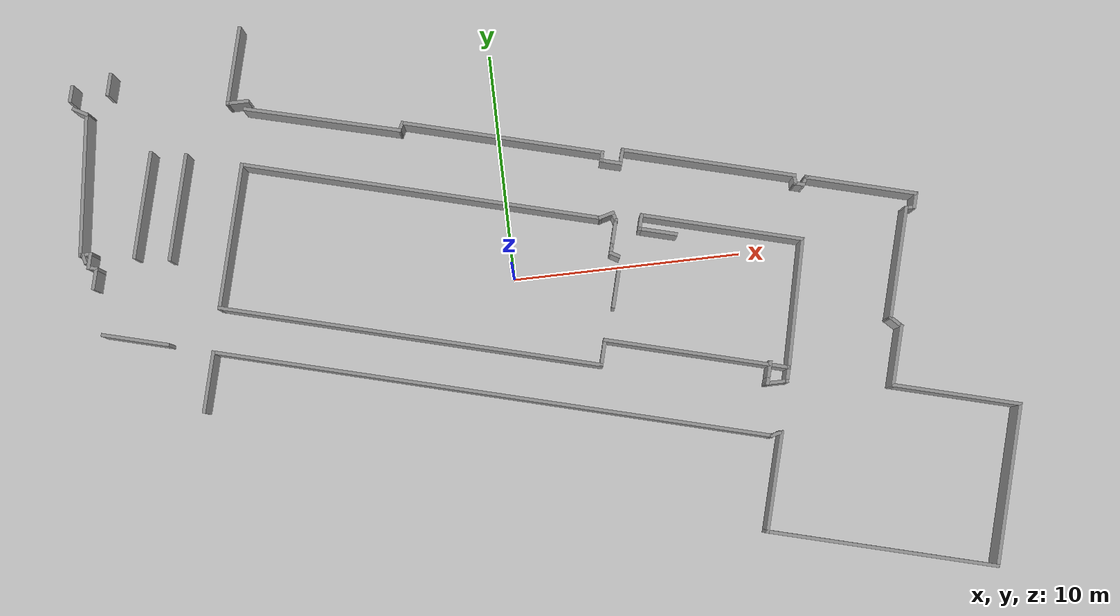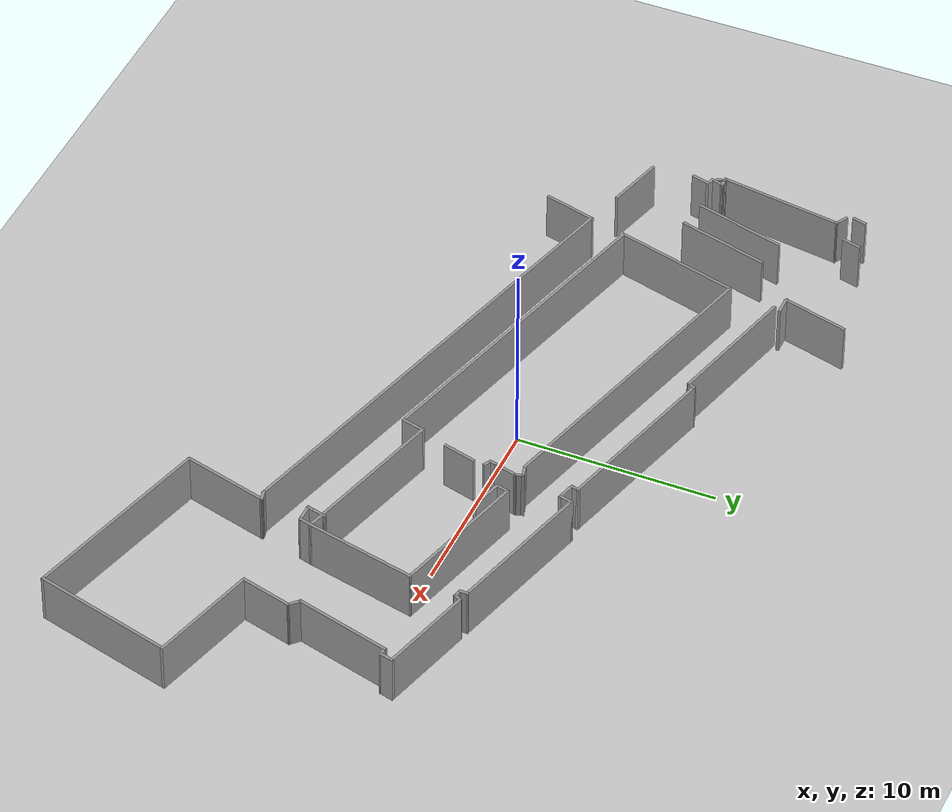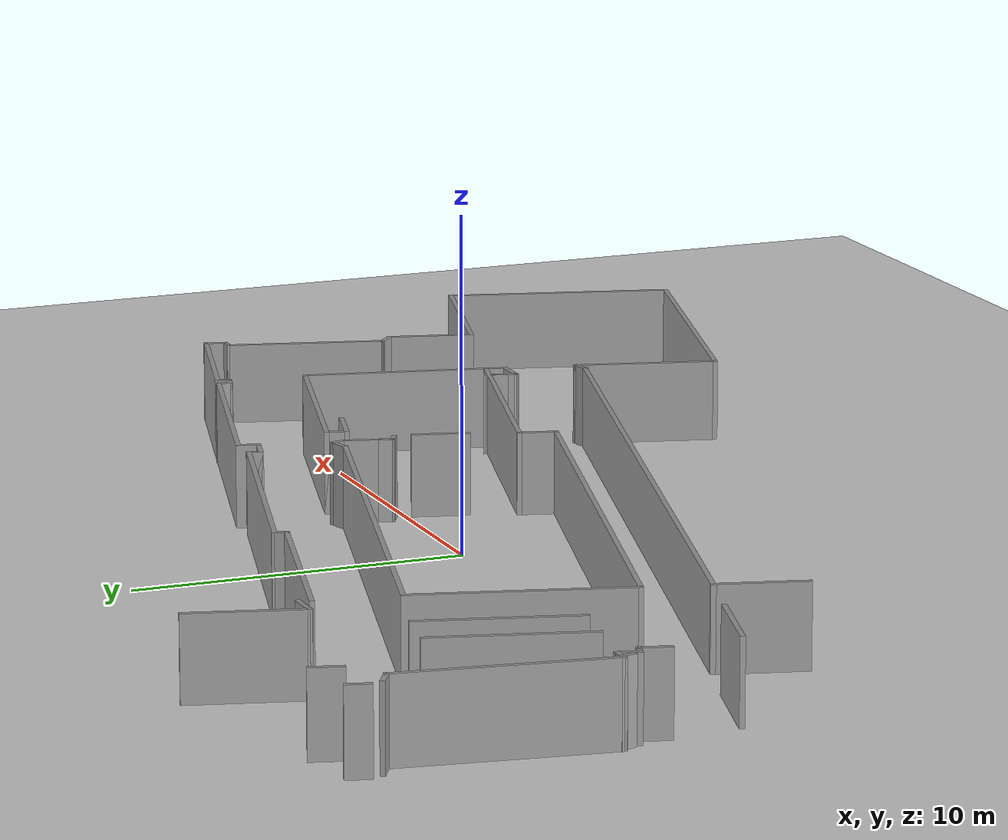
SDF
<sdf version="1.7">
 <world name="default">
  <light name="sun" type="directional">
   <pose>0 0 10 0 -0 0</pose>
   <diffuse>0.8 0.8 0.8 1</diffuse>
   <specular>0.2 0.2 0.2 1</specular>
   <attenuation>
    <range>1000</range>
    <constant>0.9</constant>
    <linear>0.01</linear>
    <quadratic>0.001</quadratic>
   </attenuation>
   <direction>-0.5 0.1 -0.9</direction>
   <spot><inner_angle>0</inner_angle><outer_angle>0</outer_angle><falloff>0</falloff></spot>
  </light>
  <model name="ground_plane">
   <static>1</static>
   <link name="link">
    <collision name="collision">
     <geometry><plane><normal>0 0 1</normal><size>100 100</size></plane></geometry>
     <surface><friction><ode><mu>100</mu><mu2>50</mu2></ode></friction></surface>
    </collision>
    <visual name="visual">
     <cast_shadows>0</cast_shadows>
     <geometry><plane><normal>0 0 1</normal><size>100 100</size></plane></geometry>
     <material>
      <script><uri>file://media/materials/scripts/gazebo.material</uri><name>Gazebo/Grey</name></script>
     </material>
    </visual>
   </link>
  </model>
  <gravity>0 0 -9.8</gravity>
  <magnetic_field>6e-06 2.3e-05 -4.2e-05</magnetic_field>
  <atmosphere type="adiabatic"/>
  <physics type="ode">
   <max_step_size>0.001</max_step_size>
   <real_time_factor>1</real_time_factor>
   <real_time_update_rate>1000</real_time_update_rate>
  </physics>
  <scene><ambient>0.4 0.4 0.4 1</ambient><background>0.7 0.7 0.7 1</background><shadows>1</shadows></scene>
  <spherical_coordinates>
   <surface_model>EARTH_WGS84</surface_model>
   <latitude_deg>0</latitude_deg>
   <longitude_deg>0</longitude_deg>
   <elevation>0</elevation>
   <heading_deg>0</heading_deg>
  </spherical_coordinates>
  <model name="Untitled">
   <pose>1.26325 -1.37856 0 0 -0 0</pose>
   <link name="Wall_0">
    <collision name="Wall_0_Collision">
     <geometry><box><size>24.75 0.15 2.5</size></box></geometry>
     <pose>0 0 1.25 0 -0 0</pose>
    </collision>
    <visual name="Wall_0_Visual">
     <pose>0 0 1.25 0 -0 0</pose>
     <geometry><box><size>24.75 0.15 2.5</size></box></geometry>
     <material>
      <script><uri>file://media/materials/scripts/gazebo.material</uri><name>Gazebo/Grey</name></script>
      <ambient>1 1 1 1</ambient>
     </material>
     <meta><layer>0</layer></meta>
    </visual>
    <pose>-2.80179 -3.64533 0 0 -0 -0.261799</pose>
   </link>
   <link name="Wall_11">
    <collision name="Wall_11_Collision">
     <geometry><box><size>0.75 0.15 2.5</size></box></geometry>
     <pose>0 0 1.25 0 -0 0</pose>
    </collision>
    <visual name="Wall_11_Visual">
     <pose>0 0 1.25 0 -0 0</pose>
     <geometry><box><size>0.75 0.15 2.5</size></box></geometry>
     <material>
      <script><uri>file://media/materials/scripts/gazebo.material</uri><name>Gazebo/Grey</name></script>
      <ambient>1 1 1 1</ambient>
     </material>
     <meta><layer>0</layer></meta>
    </visual>
    <pose>16.5209 2.66724 0 0 -0 -1.8326</pose>
   </link>
   <link name="Wall_12">
    <collision name="Wall_12_Collision">
     <geometry><box><size>0.5 0.15 2.5</size></box></geometry>
     <pose>0 0 1.25 0 -0 0</pose>
    </collision>
    <visual name="Wall_12_Visual">
     <pose>0 0 1.25 0 -0 0</pose>
     <geometry><box><size>0.5 0.15 2.5</size></box></geometry>
     <material>
      <script><uri>file://media/materials/scripts/gazebo.material</uri><name>Gazebo/Grey</name></script>
      <ambient>1 1 1 1</ambient>
     </material>
     <meta><layer>0</layer></meta>
    </visual>
    <pose>16.2682 2.37746 0 0 -0 3.14159</pose>
   </link>
   <link name="Wall_13">
    <collision name="Wall_13_Collision">
     <geometry><box><size>5 0.15 2.5</size></box></geometry>
     <pose>0 0 1.25 0 -0 0</pose>
    </collision>
    <visual name="Wall_13_Visual">
     <pose>0 0 1.25 0 -0 0</pose>
     <geometry><box><size>5 0.15 2.5</size></box></geometry>
     <material>
      <script><uri>file://media/materials/scripts/gazebo.material</uri><name>Gazebo/Grey</name></script>
      <ambient>1 1 1 1</ambient>
     </material>
     <meta><layer>0</layer></meta>
    </visual>
    <pose>15.4656 0.035088 0 0 -0 -1.8326</pose>
   </link>
   <link name="Wall_14">
    <collision name="Wall_14_Collision">
     <geometry><box><size>0.75 0.15 2.5</size></box></geometry>
     <pose>0 0 1.25 0 -0 0</pose>
    </collision>
    <visual name="Wall_14_Visual">
     <pose>0 0 1.25 0 -0 0</pose>
     <geometry><box><size>0.75 0.15 2.5</size></box></geometry>
     <material>
      <script><uri>file://media/materials/scripts/gazebo.material</uri><name>Gazebo/Grey</name></script>
      <ambient>1 1 1 1</ambient>
     </material>
     <meta><layer>0</layer></meta>
    </visual>
    <pose>15.0501 -2.51941 0 0 -0 -0.785398</pose>
   </link>
   <link name="Wall_15">
    <collision name="Wall_15_Collision">
     <geometry><box><size>2.75 0.15 2.5</size></box></geometry>
     <pose>0 0 1.25 0 -0 0</pose>
    </collision>
    <visual name="Wall_15_Visual">
     <pose>0 0 1.25 0 -0 0</pose>
     <geometry><box><size>2.75 0.15 2.5</size></box></geometry>
     <material>
      <script><uri>file://media/materials/scripts/gazebo.material</uri><name>Gazebo/Grey</name></script>
      <ambient>1 1 1 1</ambient>
     </material>
     <meta><layer>0</layer></meta>
    </visual>
    <pose>14.9257 -3.98725 0 0 -0 -1.8326</pose>
   </link>
   <link name="Wall_16">
    <collision name="Wall_16_Collision">
     <geometry><box><size>5.75 0.15 2.5</size></box></geometry>
     <pose>0 0 1.25 0 -0 0</pose>
    </collision>
    <visual name="Wall_16_Visual">
     <pose>0 0 1.25 0 -0 0</pose>
     <geometry><box><size>5.75 0.15 2.5</size></box></geometry>
     <material>
      <script><uri>file://media/materials/scripts/gazebo.material</uri><name>Gazebo/Grey</name></script>
      <ambient>1 1 1 1</ambient>
     </material>
     <meta><layer>0</layer></meta>
    </visual>
    <pose>17.2939 -5.96765 0 0 -0 -0.261799</pose>
   </link>
   <link name="Wall_17">
    <collision name="Wall_17_Collision">
     <geometry><box><size>7.25 0.15 2.5</size></box></geometry>
     <pose>0 0 1.25 0 -0 0</pose>
    </collision>
    <visual name="Wall_17_Visual">
     <pose>0 0 1.25 0 -0 0</pose>
     <geometry><box><size>7.25 0.15 2.5</size></box></geometry>
     <material>
      <script><uri>file://media/materials/scripts/gazebo.material</uri><name>Gazebo/Grey</name></script>
      <ambient>1 1 1 1</ambient>
     </material>
     <meta><layer>0</layer></meta>
    </visual>
    <pose>19.0796 -10.1214 0 0 -0 -1.8326</pose>
   </link>
   <link name="Wall_18">
    <collision name="Wall_18_Collision">
     <geometry><box><size>10.25 0.15 2.5</size></box></geometry>
     <pose>0 0 1.25 0 -0 0</pose>
    </collision>
    <visual name="Wall_18_Visual">
     <pose>0 0 1.25 0 -0 0</pose>
     <geometry><box><size>10.25 0.15 2.5</size></box></geometry>
     <material>
      <script><uri>file://media/materials/scripts/gazebo.material</uri><name>Gazebo/Grey</name></script>
      <ambient>1 1 1 1</ambient>
     </material>
     <meta><layer>0</layer></meta>
    </visual>
    <pose>13.2829 -12.2434 0 0 -0 2.87979</pose>
   </link>
   <link name="Wall_19">
    <collision name="Wall_19_Collision">
     <geometry><box><size>4.5 0.15 2.5</size></box></geometry>
     <pose>0 0 1.25 0 -0 0</pose>
    </collision>
    <visual name="Wall_19_Visual">
     <pose>0 0 1.25 0 -0 0</pose>
     <geometry><box><size>4.5 0.15 2.5</size></box></geometry>
     <material>
      <script><uri>file://media/materials/scripts/gazebo.material</uri><name>Gazebo/Grey</name></script>
      <ambient>1 1 1 1</ambient>
     </material>
     <meta><layer>0</layer></meta>
    </visual>
    <pose>8.96792 -8.83545 0 0 -0 1.309</pose>
   </link>
   <link name="Wall_2">
    <collision name="Wall_2_Collision">
     <geometry><box><size>7.25 0.15 2.5</size></box></geometry>
     <pose>0 0 1.25 0 -0 0</pose>
    </collision>
    <visual name="Wall_2_Visual">
     <pose>0 0 1.25 0 -0 0</pose>
     <geometry><box><size>7.25 0.15 2.5</size></box></geometry>
     <material>
      <script><uri>file://media/materials/scripts/gazebo.material</uri><name>Gazebo/Grey</name></script>
      <ambient>1 1 1 1</ambient>
     </material>
     <meta><layer>0</layer></meta>
    </visual>
    <pose>7.99034 2.45355 0 0 -0 2.87979</pose>
   </link>
   <link name="Wall_20">
    <collision name="Wall_20_Collision">
     <geometry><box><size>0.61148 0.15 2.5</size></box></geometry>
     <pose>0 0 1.25 0 -0 0</pose>
    </collision>
    <visual name="Wall_20_Visual">
     <pose>0 0 1.25 0 -0 0</pose>
     <geometry><box><size>0.61148 0.15 2.5</size></box></geometry>
     <material>
      <script><uri>file://media/materials/scripts/gazebo.material</uri><name>Gazebo/Grey</name></script>
      <ambient>1 1 1 1</ambient>
     </material>
     <meta><layer>0</layer></meta>
    </visual>
    <pose>9.30497 -6.78169 0 0 -0 -2.93593</pose>
   </link>
   <link name="Wall_22">
    <collision name="Wall_22_Collision">
     <geometry><box><size>8.25 0.15 2.5</size></box></geometry>
     <pose>0 0 1.25 0 -0 0</pose>
    </collision>
    <visual name="Wall_22_Visual">
     <pose>0 0 1.25 0 -0 0</pose>
     <geometry><box><size>8.25 0.15 2.5</size></box></geometry>
     <material>
      <script><uri>file://media/materials/scripts/gazebo.material</uri><name>Gazebo/Grey</name></script>
      <ambient>1 1 1 1</ambient>
     </material>
     <meta><layer>0</layer></meta>
    </visual>
    <pose>6.2603 -2.91604 0 0 -0 -0.261799</pose>
   </link>
   <link name="Wall_23">
    <collision name="Wall_23_Collision">
     <geometry><box><size>5.78864 0.15 2.5</size></box></geometry>
     <pose>0 0 1.25 0 -0 0</pose>
    </collision>
    <visual name="Wall_23_Visual">
     <pose>0 0 1.25 0 -0 0</pose>
     <geometry><box><size>5.78864 0.15 2.5</size></box></geometry>
     <material>
      <script><uri>file://media/materials/scripts/gazebo.material</uri><name>Gazebo/Grey</name></script>
      <ambient>1 1 1 1</ambient>
     </material>
     <meta><layer>0</layer></meta>
    </visual>
    <pose>10.7958 -1.21476 0 0 -0 1.34779</pose>
   </link>
   <link name="Wall_25">
    <collision name="Wall_25_Collision">
     <geometry><box><size>0.75 0.15 2.5</size></box></geometry>
     <pose>0 0 1.25 0 -0 0</pose>
    </collision>
    <visual name="Wall_25_Visual">
     <pose>0 0 1.25 0 -0 0</pose>
     <geometry><box><size>0.75 0.15 2.5</size></box></geometry>
     <material>
      <script><uri>file://media/materials/scripts/gazebo.material</uri><name>Gazebo/Grey</name></script>
      <ambient>1 1 1 1</ambient>
     </material>
     <meta><layer>0</layer></meta>
    </visual>
    <pose>9.32052 -3.94069 0 0 -0 -1.8326</pose>
   </link>
   <link name="Wall_27">
    <collision name="Wall_27_Collision">
     <geometry><box><size>0.75 0.15 2.5</size></box></geometry>
     <pose>0 0 1.25 0 -0 0</pose>
    </collision>
    <visual name="Wall_27_Visual">
     <pose>0 0 1.25 0 -0 0</pose>
     <geometry><box><size>0.75 0.15 2.5</size></box></geometry>
     <material>
      <script><uri>file://media/materials/scripts/gazebo.material</uri><name>Gazebo/Grey</name></script>
      <ambient>1 1 1 1</ambient>
     </material>
     <meta><layer>0</layer></meta>
    </visual>
    <pose>10.0947 -4.25404 0 0 -0 -1.8326</pose>
   </link>
   <link name="Wall_28">
    <collision name="Wall_28_Collision">
     <geometry><box><size>1 0.15 2.5</size></box></geometry>
     <pose>0 0 1.25 0 -0 0</pose>
    </collision>
    <visual name="Wall_28_Visual">
     <pose>0 0 1.25 0 -0 0</pose>
     <geometry><box><size>1 0.15 2.5</size></box></geometry>
     <material>
      <script><uri>file://media/materials/scripts/gazebo.material</uri><name>Gazebo/Grey</name></script>
      <ambient>1 1 1 1</ambient>
     </material>
     <meta><layer>0</layer></meta>
    </visual>
    <pose>9.59201 -4.54381 0 0 -0 3.14159</pose>
   </link>
   <link name="Wall_29">
    <collision name="Wall_29_Collision">
     <geometry><box><size>1.07234 0.15 2.5</size></box></geometry>
     <pose>0 0 1.25 0 -0 0</pose>
    </collision>
    <visual name="Wall_29_Visual">
     <pose>0 0 1.25 0 -0 0</pose>
     <geometry><box><size>1.07234 0.15 2.5</size></box></geometry>
     <material>
      <script><uri>file://media/materials/scripts/gazebo.material</uri><name>Gazebo/Grey</name></script>
      <ambient>1 1 1 1</ambient>
     </material>
     <meta><layer>0</layer></meta>
    </visual>
    <pose>9.28259 -4.09736 0 0 -0 1.31747</pose>
   </link>
   <link name="Wall_31">
    <collision name="Wall_31_Collision">
     <geometry><box><size>1.25 0.15 2.5</size></box></geometry>
     <pose>0 0 1.25 0 -0 0</pose>
    </collision>
    <visual name="Wall_31_Visual">
     <pose>0 0 1.25 0 -0 0</pose>
     <geometry><box><size>1.25 0.15 2.5</size></box></geometry>
     <material>
      <script><uri>file://media/materials/scripts/gazebo.material</uri><name>Gazebo/Grey</name></script>
      <ambient>1 1 1 1</ambient>
     </material>
     <meta><layer>0</layer></meta>
    </visual>
    <pose>2.20595 -2.39908 0 0 -0 -1.8326</pose>
   </link>
   <link name="Wall_32">
    <collision name="Wall_32_Collision">
     <geometry><box><size>17 0.15 2.5</size></box></geometry>
     <pose>0 0 1.25 0 -0 0</pose>
    </collision>
    <visual name="Wall_32_Visual">
     <pose>0 0 1.25 0 -0 0</pose>
     <geometry><box><size>17 0.15 2.5</size></box></geometry>
     <material>
      <script><uri>file://media/materials/scripts/gazebo.material</uri><name>Gazebo/Grey</name></script>
      <ambient>1 1 1 1</ambient>
     </material>
     <meta><layer>0</layer></meta>
    </visual>
    <pose>-6.07433 -0.749792 0 0 -0 2.87979</pose>
   </link>
   <link name="Wall_33">
    <collision name="Wall_33_Collision">
     <geometry><box><size>6.5 0.15 2.5</size></box></geometry>
     <pose>0 0 1.25 0 -0 0</pose>
    </collision>
    <visual name="Wall_33_Visual">
     <pose>0 0 1.25 0 -0 0</pose>
     <geometry><box><size>6.5 0.15 2.5</size></box></geometry>
     <material>
      <script><uri>file://media/materials/scripts/gazebo.material</uri><name>Gazebo/Grey</name></script>
      <ambient>1 1 1 1</ambient>
     </material>
     <meta><layer>0</layer></meta>
    </visual>
    <pose>-13.3905 4.49757 0 0 -0 1.309</pose>
   </link>
   <link name="Wall_34">
    <collision name="Wall_34_Collision">
     <geometry><box><size>16 0.15 2.5</size></box></geometry>
     <pose>0 0 1.25 0 -0 0</pose>
    </collision>
    <visual name="Wall_34_Visual">
     <pose>0 0 1.25 0 -0 0</pose>
     <geometry><box><size>16 0.15 2.5</size></box></geometry>
     <material>
      <script><uri>file://media/materials/scripts/gazebo.material</uri><name>Gazebo/Grey</name></script>
      <ambient>1 1 1 1</ambient>
     </material>
     <meta><layer>0</layer></meta>
    </visual>
    <pose>-4.91379 5.51325 0 0 -0 -0.261799</pose>
   </link>
   <link name="Wall_35">
    <collision name="Wall_35_Collision">
     <geometry><box><size>0.75 0.15 2.5</size></box></geometry>
     <pose>0 0 1.25 0 -0 0</pose>
    </collision>
    <visual name="Wall_35_Visual">
     <pose>0 0 1.25 0 -0 0</pose>
     <geometry><box><size>0.75 0.15 2.5</size></box></geometry>
     <material>
      <script><uri>file://media/materials/scripts/gazebo.material</uri><name>Gazebo/Grey</name></script>
      <ambient>1 1 1 1</ambient>
     </material>
     <meta><layer>0</layer></meta>
    </visual>
    <pose>3.03095 3.53975 0 0 -0 0.261799</pose>
   </link>
   <link name="Wall_36">
    <collision name="Wall_36_Collision">
     <geometry><box><size>0.5 0.15 2.5</size></box></geometry>
     <pose>0 0 1.25 0 -0 0</pose>
    </collision>
    <visual name="Wall_36_Visual">
     <pose>0 0 1.25 0 -0 0</pose>
     <geometry><box><size>0.5 0.15 2.5</size></box></geometry>
     <material>
      <script><uri>file://media/materials/scripts/gazebo.material</uri><name>Gazebo/Grey</name></script>
      <ambient>1 1 1 1</ambient>
     </material>
     <meta><layer>0</layer></meta>
    </visual>
    <pose>3.36602 3.44836 0 0 -0 -1.309</pose>
   </link>
   <link name="Wall_37">
    <collision name="Wall_37_Collision">
     <geometry><box><size>1.25 0.15 2.5</size></box></geometry>
     <pose>0 0 1.25 0 -0 0</pose>
    </collision>
    <visual name="Wall_37_Visual">
     <pose>0 0 1.25 0 -0 0</pose>
     <geometry><box><size>1.25 0.15 2.5</size></box></geometry>
     <material>
      <script><uri>file://media/materials/scripts/gazebo.material</uri><name>Gazebo/Grey</name></script>
      <ambient>1 1 1 1</ambient>
     </material>
     <meta><layer>0</layer></meta>
    </visual>
    <pose>3.26897 2.74806 0 0 -0 -1.8326</pose>
   </link>
   <link name="Wall_38">
    <collision name="Wall_38_Collision">
     <geometry><box><size>0.5 0.15 2.5</size></box></geometry>
     <pose>0 0 1.25 0 -0 0</pose>
    </collision>
    <visual name="Wall_38_Visual">
     <pose>0 0 1.25 0 -0 0</pose>
     <geometry><box><size>0.5 0.15 2.5</size></box></geometry>
     <material>
      <script><uri>file://media/materials/scripts/gazebo.material</uri><name>Gazebo/Grey</name></script>
      <ambient>1 1 1 1</ambient>
     </material>
     <meta><layer>0</layer></meta>
    </visual>
    <pose>3.08132 2.04777 0 0 -0 -1.8326</pose>
   </link>
   <link name="Wall_39">
    <collision name="Wall_39_Collision">
     <geometry><box><size>0.5 0.15 2.5</size></box></geometry>
     <pose>0 0 1.25 0 -0 0</pose>
    </collision>
    <visual name="Wall_39_Visual">
     <pose>0 0 1.25 0 -0 0</pose>
     <geometry><box><size>0.5 0.15 2.5</size></box></geometry>
     <material>
      <script><uri>file://media/materials/scripts/gazebo.material</uri><name>Gazebo/Grey</name></script>
      <ambient>1 1 1 1</ambient>
     </material>
     <meta><layer>0</layer></meta>
    </visual>
    <pose>3.18758 1.79123 0 0 -0 -0.523599</pose>
   </link>
   <link name="Wall_4">
    <collision name="Wall_4_Collision">
     <geometry><box><size>7.75 0.15 2.5</size></box></geometry>
     <pose>0 0 1.25 0 -0 0</pose>
    </collision>
    <visual name="Wall_4_Visual">
     <pose>0 0 1.25 0 -0 0</pose>
     <geometry><box><size>7.75 0.15 2.5</size></box></geometry>
     <material>
      <script><uri>file://media/materials/scripts/gazebo.material</uri><name>Gazebo/Grey</name></script>
      <ambient>1 1 1 1</ambient>
     </material>
     <meta><layer>0</layer></meta>
    </visual>
    <pose>7.73017 5.33328 0 0 -0 -0.261799</pose>
   </link>
   <link name="Wall_41">
    <collision name="Wall_41_Collision">
     <geometry><box><size>0.75 0.15 2.5</size></box></geometry>
     <pose>0 0 1.25 0 -0 0</pose>
    </collision>
    <visual name="Wall_41_Visual">
     <pose>0 0 1.25 0 -0 0</pose>
     <geometry><box><size>0.75 0.15 2.5</size></box></geometry>
     <material>
      <script><uri>file://media/materials/scripts/gazebo.material</uri><name>Gazebo/Grey</name></script>
      <ambient>1 1 1 1</ambient>
     </material>
     <meta><layer>0</layer></meta>
    </visual>
    <pose>3.982 6.02701 0 0 -0 -1.8326</pose>
   </link>
   <link name="Wall_42">
    <collision name="Wall_42_Collision">
     <geometry><box><size>1 0.15 2.5</size></box></geometry>
     <pose>0 0 1.25 0 -0 0</pose>
    </collision>
    <visual name="Wall_42_Visual">
     <pose>0 0 1.25 0 -0 0</pose>
     <geometry><box><size>1 0.15 2.5</size></box></geometry>
     <material>
      <script><uri>file://media/materials/scripts/gazebo.material</uri><name>Gazebo/Grey</name></script>
      <ambient>1 1 1 1</ambient>
     </material>
     <meta><layer>0</layer></meta>
    </visual>
    <pose>3.49384 5.84723 0 0 -0 2.87979</pose>
   </link>
   <link name="Wall_43">
    <collision name="Wall_43_Collision">
     <geometry><box><size>0.5 0.15 2.5</size></box></geometry>
     <pose>0 0 1.25 0 -0 0</pose>
    </collision>
    <visual name="Wall_43_Visual">
     <pose>0 0 1.25 0 -0 0</pose>
     <geometry><box><size>0.5 0.15 2.5</size></box></geometry>
     <material>
      <script><uri>file://media/materials/scripts/gazebo.material</uri><name>Gazebo/Grey</name></script>
      <ambient>1 1 1 1</ambient>
     </material>
     <meta><layer>0</layer></meta>
    </visual>
    <pose>3.12861 6.12627 0 0 -0 1.309</pose>
   </link>
   <link name="Wall_44">
    <collision name="Wall_44_Collision">
     <geometry><box><size>9 0.15 2.5</size></box></geometry>
     <pose>0 0 1.25 0 -0 0</pose>
    </collision>
    <visual name="Wall_44_Visual">
     <pose>0 0 1.25 0 -0 0</pose>
     <geometry><box><size>9 0.15 2.5</size></box></geometry>
     <material>
      <script><uri>file://media/materials/scripts/gazebo.material</uri><name>Gazebo/Grey</name></script>
      <ambient>1 1 1 1</ambient>
     </material>
     <meta><layer>0</layer></meta>
    </visual>
    <pose>-1.10032 7.44058 0 0 -0 2.87979</pose>
   </link>
   <link name="Wall_45">
    <collision name="Wall_45_Collision">
     <geometry><box><size>0.5 0.15 2.5</size></box></geometry>
     <pose>0 0 1.25 0 -0 0</pose>
    </collision>
    <visual name="Wall_45_Visual">
     <pose>0 0 1.25 0 -0 0</pose>
     <geometry><box><size>0.5 0.15 2.5</size></box></geometry>
     <material>
      <script><uri>file://media/materials/scripts/gazebo.material</uri><name>Gazebo/Grey</name></script>
      <ambient>1 1 1 1</ambient>
     </material>
     <meta><layer>0</layer></meta>
    </visual>
    <pose>-5.46204 8.4343 0 0 -0 -2.0944</pose>
   </link>
   <link name="Wall_47">
    <collision name="Wall_47_Collision">
     <geometry><box><size>6.9856 0.15 2.5</size></box></geometry>
     <pose>0 0 1.25 0 -0 0</pose>
    </collision>
    <visual name="Wall_47_Visual">
     <pose>0 0 1.25 0 -0 0</pose>
     <geometry><box><size>6.9856 0.15 2.5</size></box></geometry>
     <material>
      <script><uri>file://media/materials/scripts/gazebo.material</uri><name>Gazebo/Grey</name></script>
      <ambient>1 1 1 1</ambient>
     </material>
     <meta><layer>0</layer></meta>
    </visual>
    <pose>-8.85933 9.13515 0 0 -0 -0.252063</pose>
   </link>
   <link name="Wall_49">
    <collision name="Wall_49_Collision">
     <geometry><box><size>3.5 0.15 2.5</size></box></geometry>
     <pose>0 0 1.25 0 -0 0</pose>
    </collision>
    <visual name="Wall_49_Visual">
     <pose>0 0 1.25 0 -0 0</pose>
     <geometry><box><size>3.5 0.15 2.5</size></box></geometry>
     <material>
      <script><uri>file://media/materials/scripts/gazebo.material</uri><name>Gazebo/Grey</name></script>
      <ambient>1 1 1 1</ambient>
     </material>
     <meta><layer>0</layer></meta>
    </visual>
    <pose>-12.4628 11.9325 0 0 -0 -1.8326</pose>
   </link>
   <link name="Wall_50">
    <collision name="Wall_50_Collision">
     <geometry><box><size>1 0.15 2.5</size></box></geometry>
     <pose>0 0 1.25 0 -0 0</pose>
    </collision>
    <visual name="Wall_50_Visual">
     <pose>0 0 1.25 0 -0 0</pose>
     <geometry><box><size>1 0.15 2.5</size></box></geometry>
     <material>
      <script><uri>file://media/materials/scripts/gazebo.material</uri><name>Gazebo/Grey</name></script>
      <ambient>1 1 1 1</ambient>
     </material>
     <meta><layer>0</layer></meta>
    </visual>
    <pose>-12.4713 10.3146 0 0 -0 0</pose>
   </link>
   <link name="Wall_52">
    <collision name="Wall_52_Collision">
     <geometry><box><size>4.75 0.15 2.5</size></box></geometry>
     <pose>0 0 1.25 0 -0 0</pose>
    </collision>
    <visual name="Wall_52_Visual">
     <pose>0 0 1.25 0 -0 0</pose>
     <geometry><box><size>4.75 0.15 2.5</size></box></geometry>
     <material>
      <script><uri>file://media/materials/scripts/gazebo.material</uri><name>Gazebo/Grey</name></script>
      <ambient>1 1 1 1</ambient>
     </material>
     <meta><layer>0</layer></meta>
    </visual>
    <pose>-15.5528 6.02576 0 0 -0 -1.8326</pose>
   </link>
   <link name="Wall_54">
    <collision name="Wall_54_Collision">
     <geometry><box><size>4.75 0.15 2.5</size></box></geometry>
     <pose>0 0 1.25 0 -0 0</pose>
    </collision>
    <visual name="Wall_54_Visual">
     <pose>0 0 1.25 0 -0 0</pose>
     <geometry><box><size>4.75 0.15 2.5</size></box></geometry>
     <material>
      <script><uri>file://media/materials/scripts/gazebo.material</uri><name>Gazebo/Grey</name></script>
      <ambient>1 1 1 1</ambient>
     </material>
     <meta><layer>0</layer></meta>
    </visual>
    <pose>-17.0745 6.30244 0 0 -0 -1.8326</pose>
   </link>
   <link name="Wall_56">
    <collision name="Wall_56_Collision">
     <geometry><box><size>1 0.15 2.5</size></box></geometry>
     <pose>0 0 1.25 0 -0 0</pose>
    </collision>
    <visual name="Wall_56_Visual">
     <pose>0 0 1.25 0 -0 0</pose>
     <geometry><box><size>1 0.15 2.5</size></box></geometry>
     <material>
      <script><uri>file://media/materials/scripts/gazebo.material</uri><name>Gazebo/Grey</name></script>
      <ambient>1 1 1 1</ambient>
     </material>
     <meta><layer>0</layer></meta>
    </visual>
    <pose>-17.9726 11.7334 0 0 -0 -1.8326</pose>
   </link>
   <link name="Wall_58">
    <collision name="Wall_58_Collision">
     <geometry><box><size>0.75 0.15 2.5</size></box></geometry>
     <pose>0 0 1.25 0 -0 0</pose>
    </collision>
    <visual name="Wall_58_Visual">
     <pose>0 0 1.25 0 -0 0</pose>
     <geometry><box><size>0.75 0.15 2.5</size></box></geometry>
     <material>
      <script><uri>file://media/materials/scripts/gazebo.material</uri><name>Gazebo/Grey</name></script>
      <ambient>1 1 1 1</ambient>
     </material>
     <meta><layer>0</layer></meta>
    </visual>
    <pose>-19.6695 11.5083 0 0 -0 -1.8326</pose>
   </link>
   <link name="Wall_6">
    <collision name="Wall_6_Collision">
     <geometry><box><size>0.5 0.15 2.5</size></box></geometry>
     <pose>0 0 1.25 0 -0 0</pose>
    </collision>
    <visual name="Wall_6_Visual">
     <pose>0 0 1.25 0 -0 0</pose>
     <geometry><box><size>0.5 0.15 2.5</size></box></geometry>
     <material>
      <script><uri>file://media/materials/scripts/gazebo.material</uri><name>Gazebo/Grey</name></script>
      <ambient>1 1 1 1</ambient>
     </material>
     <meta><layer>0</layer></meta>
    </visual>
    <pose>11.4007 4.17476 0 0 -0 -1.5708</pose>
   </link>
   <link name="Wall_60">
    <collision name="Wall_60_Collision">
     <geometry><box><size>0.75 0.15 2.5</size></box></geometry>
     <pose>0 0 1.25 0 -0 0</pose>
    </collision>
    <visual name="Wall_60_Visual">
     <pose>0 0 1.25 0 -0 0</pose>
     <geometry><box><size>0.75 0.15 2.5</size></box></geometry>
     <material>
      <script><uri>file://media/materials/scripts/gazebo.material</uri><name>Gazebo/Grey</name></script>
      <ambient>1 1 1 1</ambient>
     </material>
     <meta><layer>0</layer></meta>
    </visual>
    <pose>-19.3551 10.6797 0 0 -0 -0.523599</pose>
   </link>
   <link name="Wall_62">
    <collision name="Wall_62_Collision">
     <geometry><box><size>6.33209 0.15 2.5</size></box></geometry>
     <pose>0 0 1.25 0 -0 0</pose>
    </collision>
    <visual name="Wall_62_Visual">
     <pose>0 0 1.25 0 -0 0</pose>
     <geometry><box><size>6.33209 0.15 2.5</size></box></geometry>
     <material>
      <script><uri>file://media/materials/scripts/gazebo.material</uri><name>Gazebo/Grey</name></script>
      <ambient>1 1 1 1</ambient>
     </material>
     <meta><layer>0</layer></meta>
    </visual>
    <pose>-19.5502 7.47234 0 0 -0 1.4231</pose>
   </link>
   <link name="Wall_64">
    <collision name="Wall_64_Collision">
     <geometry><box><size>0.25 0.15 2.5</size></box></geometry>
     <pose>0 0 1.25 0 -0 0</pose>
    </collision>
    <visual name="Wall_64_Visual">
     <pose>0 0 1.25 0 -0 0</pose>
     <geometry><box><size>0.25 0.15 2.5</size></box></geometry>
     <material>
      <script><uri>file://media/materials/scripts/gazebo.material</uri><name>Gazebo/Grey</name></script>
      <ambient>1 1 1 1</ambient>
     </material>
     <meta><layer>0</layer></meta>
    </visual>
    <pose>-19.9551 4.41495 0 0 -0 0</pose>
   </link>
   <link name="Wall_65">
    <collision name="Wall_65_Collision">
     <geometry><box><size>0.5 0.15 2.5</size></box></geometry>
     <pose>0 0 1.25 0 -0 0</pose>
    </collision>
    <visual name="Wall_65_Visual">
     <pose>0 0 1.25 0 -0 0</pose>
     <geometry><box><size>0.5 0.15 2.5</size></box></geometry>
     <material>
      <script><uri>file://media/materials/scripts/gazebo.material</uri><name>Gazebo/Grey</name></script>
      <ambient>1 1 1 1</ambient>
     </material>
     <meta><layer>0</layer></meta>
    </visual>
    <pose>-19.8598 4.24592 0 0 -0 -1.309</pose>
   </link>
   <link name="Wall_67">
    <collision name="Wall_67_Collision">
     <geometry><box><size>0.5 0.15 2.5</size></box></geometry>
     <pose>0 0 1.25 0 -0 0</pose>
    </collision>
    <visual name="Wall_67_Visual">
     <pose>0 0 1.25 0 -0 0</pose>
     <geometry><box><size>0.5 0.15 2.5</size></box></geometry>
     <material>
      <script><uri>file://media/materials/scripts/gazebo.material</uri><name>Gazebo/Grey</name></script>
      <ambient>1 1 1 1</ambient>
     </material>
     <meta><layer>0</layer></meta>
    </visual>
    <pose>-19.7301 4.41495 0 0 -0 0</pose>
   </link>
   <link name="Wall_68">
    <collision name="Wall_68_Collision">
     <geometry><box><size>0.75 0.15 2.5</size></box></geometry>
     <pose>0 0 1.25 0 -0 0</pose>
    </collision>
    <visual name="Wall_68_Visual">
     <pose>0 0 1.25 0 -0 0</pose>
     <geometry><box><size>0.75 0.15 2.5</size></box></geometry>
     <material>
      <script><uri>file://media/materials/scripts/gazebo.material</uri><name>Gazebo/Grey</name></script>
      <ambient>1 1 1 1</ambient>
     </material>
     <meta><layer>0</layer></meta>
    </visual>
    <pose>-19.6327 4.12518 0 0 -0 -1.8326</pose>
   </link>
   <link name="Wall_69">
    <collision name="Wall_69_Collision">
     <geometry><box><size>0.5 0.15 2.5</size></box></geometry>
     <pose>0 0 1.25 0 -0 0</pose>
    </collision>
    <visual name="Wall_69_Visual">
     <pose>0 0 1.25 0 -0 0</pose>
     <geometry><box><size>0.5 0.15 2.5</size></box></geometry>
     <material>
      <script><uri>file://media/materials/scripts/gazebo.material</uri><name>Gazebo/Grey</name></script>
      <ambient>1 1 1 1</ambient>
     </material>
     <meta><layer>0</layer></meta>
    </visual>
    <pose>-19.5413 3.79011 0 0 -0 -0.261799</pose>
   </link>
   <link name="Wall_7">
    <collision name="Wall_7_Collision">
     <geometry><box><size>0.5 0.15 2.5</size></box></geometry>
     <pose>0 0 1.25 0 -0 0</pose>
    </collision>
    <visual name="Wall_7_Visual">
     <pose>0 0 1.25 0 -0 0</pose>
     <geometry><box><size>0.5 0.15 2.5</size></box></geometry>
     <material>
      <script><uri>file://media/materials/scripts/gazebo.material</uri><name>Gazebo/Grey</name></script>
      <ambient>1 1 1 1</ambient>
     </material>
     <meta><layer>0</layer></meta>
    </visual>
    <pose>11.5697 3.95447 0 0 -0 -0.261799</pose>
   </link>
   <link name="Wall_71">
    <collision name="Wall_71_Collision">
     <geometry><box><size>3 0.15 2.5</size></box></geometry>
     <pose>0 0 1.25 0 -0 0</pose>
    </collision>
    <visual name="Wall_71_Visual">
     <pose>0 0 1.25 0 -0 0</pose>
     <geometry><box><size>3 0.15 2.5</size></box></geometry>
     <material>
      <script><uri>file://media/materials/scripts/gazebo.material</uri><name>Gazebo/Grey</name></script>
      <ambient>1 1 1 1</ambient>
     </material>
     <meta><layer>0</layer></meta>
    </visual>
    <pose>-18.0148 0.465729 0 0 -0 -0.261799</pose>
   </link>
   <link name="Wall_73">
    <collision name="Wall_73_Collision">
     <geometry><box><size>2.75 0.15 2.5</size></box></geometry>
     <pose>0 0 1.25 0 -0 0</pose>
    </collision>
    <visual name="Wall_73_Visual">
     <pose>0 0 1.25 0 -0 0</pose>
     <geometry><box><size>2.75 0.15 2.5</size></box></geometry>
     <material>
      <script><uri>file://media/materials/scripts/gazebo.material</uri><name>Gazebo/Grey</name></script>
      <ambient>1 1 1 1</ambient>
     </material>
     <meta><layer>0</layer></meta>
    </visual>
    <pose>-15.0191 -1.71756 0 0 -0 -1.8326</pose>
   </link>
   <link name="Wall_75">
    <collision name="Wall_75_Collision">
     <geometry><box><size>1 0.15 2.5</size></box></geometry>
     <pose>0 0 1.25 0 -0 0</pose>
    </collision>
    <visual name="Wall_75_Visual">
     <pose>0 0 1.25 0 -0 0</pose>
     <geometry><box><size>1 0.15 2.5</size></box></geometry>
     <material>
      <script><uri>file://media/materials/scripts/gazebo.material</uri><name>Gazebo/Grey</name></script>
      <ambient>1 1 1 1</ambient>
     </material>
     <meta><layer>0</layer></meta>
    </visual>
    <pose>-19.4823 3.33429 0 0 -0 -1.8326</pose>
   </link>
   <link name="Wall_77">
    <collision name="Wall_77_Collision">
     <geometry><box><size>1.75 0.15 2.5</size></box></geometry>
     <pose>0 0 1.25 0 -0 0</pose>
    </collision>
    <visual name="Wall_77_Visual">
     <pose>0 0 1.25 0 -0 0</pose>
     <geometry><box><size>1.75 0.15 2.5</size></box></geometry>
     <material>
      <script><uri>file://media/materials/scripts/gazebo.material</uri><name>Gazebo/Grey</name></script>
      <ambient>1 1 1 1</ambient>
     </material>
     <meta><layer>0</layer></meta>
    </visual>
    <pose>3.08742 0.333568 0 0 -0 -1.8326</pose>
   </link>
   <link name="Wall_79">
    <collision name="Wall_79_Collision">
     <geometry><box><size>0.75 0.15 2.5</size></box></geometry>
     <pose>0 0 1.25 0 -0 0</pose>
    </collision>
    <visual name="Wall_79_Visual">
     <pose>0 0 1.25 0 -0 0</pose>
     <geometry><box><size>0.75 0.15 2.5</size></box></geometry>
     <material>
      <script><uri>file://media/materials/scripts/gazebo.material</uri><name>Gazebo/Grey</name></script>
      <ambient>1 1 1 1</ambient>
     </material>
     <meta><layer>0</layer></meta>
    </visual>
    <pose>4.48366 3.08258 0 0 -0 -1.8326</pose>
   </link>
   <link name="Wall_8">
    <collision name="Wall_8_Collision">
     <geometry><box><size>0.5 0.15 2.5</size></box></geometry>
     <pose>0 0 1.25 0 -0 0</pose>
    </collision>
    <visual name="Wall_8_Visual">
     <pose>0 0 1.25 0 -0 0</pose>
     <geometry><box><size>0.5 0.15 2.5</size></box></geometry>
     <material>
      <script><uri>file://media/materials/scripts/gazebo.material</uri><name>Gazebo/Grey</name></script>
      <ambient>1 1 1 1</ambient>
     </material>
     <meta><layer>0</layer></meta>
    </visual>
    <pose>11.8263 4.06073 0 0 -0 1.0472</pose>
   </link>
   <link name="Wall_80">
    <collision name="Wall_80_Collision">
     <geometry><box><size>1.75 0.15 2.5</size></box></geometry>
     <pose>0 0 1.25 0 -0 0</pose>
    </collision>
    <visual name="Wall_80_Visual">
     <pose>0 0 1.25 0 -0 0</pose>
     <geometry><box><size>1.75 0.15 2.5</size></box></geometry>
     <material>
      <script><uri>file://media/materials/scripts/gazebo.material</uri><name>Gazebo/Grey</name></script>
      <ambient>1 1 1 1</ambient>
     </material>
     <meta><layer>0</layer></meta>
    </visual>
    <pose>5.17875 2.58575 0 0 -0 -0.261799</pose>
   </link>
   <link name="Wall_9">
    <collision name="Wall_9_Collision">
     <geometry><box><size>5 0.15 2.5</size></box></geometry>
     <pose>0 0 1.25 0 -0 0</pose>
    </collision>
    <visual name="Wall_9_Visual">
     <pose>0 0 1.25 0 -0 0</pose>
     <geometry><box><size>5 0.15 2.5</size></box></geometry>
     <material>
      <script><uri>file://media/materials/scripts/gazebo.material</uri><name>Gazebo/Grey</name></script>
      <ambient>1 1 1 1</ambient>
     </material>
     <meta><layer>0</layer></meta>
    </visual>
    <pose>14.2561 3.58465 0 0 -0 -0.261799</pose>
   </link>
   <static>1</static>
  </model>
 </world>
</sdf>
